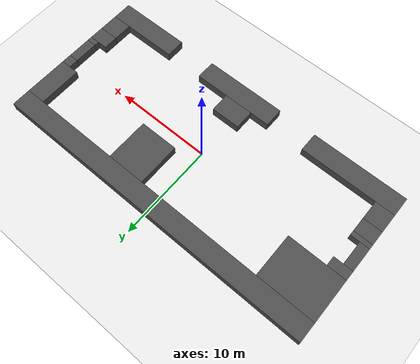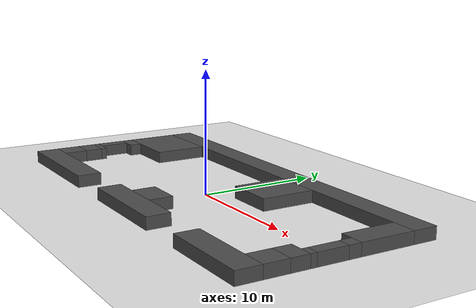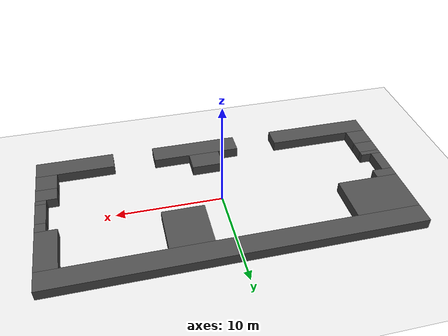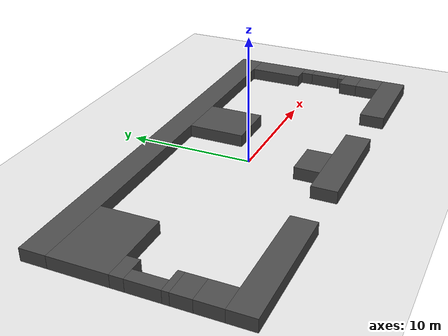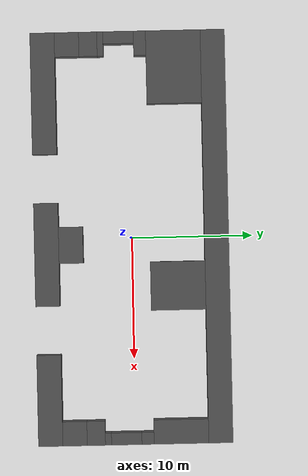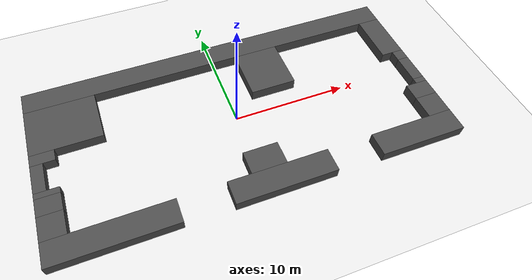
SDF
<?xml version="1.0" ?>
<sdf version="1.8">
  <world name="custom_map_world">

    <physics name="1ms" type="ignored">
      <max_step_size>0.001</max_step_size>
      <real_time_factor>1.0</real_time_factor>
    </physics>

    <plugin filename="gz-sim-physics-system"        name="gz::sim::systems::Physics"/>
    <plugin filename="gz-sim-user-commands-system"  name="gz::sim::systems::UserCommands"/>
    <plugin filename="gz-sim-scene-broadcaster-system" name="gz::sim::systems::SceneBroadcaster"/>
    <plugin filename="gz-sim-sensors-system"        name="gz::sim::systems::Sensors">
      <render_engine>ogre2</render_engine>
    </plugin>

    <light name="sun" type="directional">
      <cast_shadows>true</cast_shadows>
      <pose>0 0 10 0 0 0</pose>
      <diffuse>0.8 0.8 0.8 1</diffuse>
      <specular>0.2 0.2 0.2 1</specular>
      <direction>-0.5 0.1 -0.9</direction>
    </light>

    <model name="ground_plane">
      <static>true</static>
      <link name="link">
        <collision name="collision">
          <geometry><plane><normal>0 0 1</normal><size>100 100</size></plane></geometry>
        </collision>
        <visual name="visual">
          <geometry><plane><normal>0 0 1</normal><size>100 100</size></plane></geometry>
          <material><ambient>0.9 0.9 0.9 1</ambient><diffuse>0.9 0.9 0.9 1</diffuse></material>
        </visual>
      </link>
    </model>

    <model name="top_border">
      <static>true</static>
      <pose>0.0000 7.0000 0.50 0 0 0</pose>
      <link name="link">
        <collision name="collision">
          <geometry><box><size>34.0000 2.0000 1.0</size></box></geometry>
        </collision>
        <visual name="visual">
          <geometry><box><size>34.0000 2.0000 1.0</size></box></geometry>
          <material><ambient>0.2 0.2 0.2 1</ambient><diffuse>0.3 0.3 0.3 1</diffuse></material>
        </visual>
      </link>
    </model>
    <model name="upper_left_wall">
      <static>true</static>
      <pose>-14.0000 3.7500 0.50 0 0 0</pose>
      <link name="link">
        <collision name="collision">
          <geometry><box><size>6.0000 4.5000 1.0</size></box></geometry>
        </collision>
        <visual name="visual">
          <geometry><box><size>6.0000 4.5000 1.0</size></box></geometry>
          <material><ambient>0.2 0.2 0.2 1</ambient><diffuse>0.3 0.3 0.3 1</diffuse></material>
        </visual>
      </link>
    </model>
    <model name="upper_center_divider">
      <static>true</static>
      <pose>4.0000 3.7500 0.50 0 0 0</pose>
      <link name="link">
        <collision name="collision">
          <geometry><box><size>4.0000 4.5000 1.0</size></box></geometry>
        </collision>
        <visual name="visual">
          <geometry><box><size>4.0000 4.5000 1.0</size></box></geometry>
          <material><ambient>0.2 0.2 0.2 1</ambient><diffuse>0.3 0.3 0.3 1</diffuse></material>
        </visual>
      </link>
    </model>
    <model name="upper_right_border">
      <static>true</static>
      <pose>16.0000 3.7500 0.50 0 0 0</pose>
      <link name="link">
        <collision name="collision">
          <geometry><box><size>2.0000 4.5000 1.0</size></box></geometry>
        </collision>
        <visual name="visual">
          <geometry><box><size>2.0000 4.5000 1.0</size></box></geometry>
          <material><ambient>0.2 0.2 0.2 1</ambient><diffuse>0.3 0.3 0.3 1</diffuse></material>
        </visual>
      </link>
    </model>
    <model name="mid_upper_left">
      <static>true</static>
      <pose>-16.0000 1.0000 0.50 0 0 0</pose>
      <link name="link">
        <collision name="collision">
          <geometry><box><size>2.0000 1.0000 1.0</size></box></geometry>
        </collision>
        <visual name="visual">
          <geometry><box><size>2.0000 1.0000 1.0</size></box></geometry>
          <material><ambient>0.2 0.2 0.2 1</ambient><diffuse>0.3 0.3 0.3 1</diffuse></material>
        </visual>
      </link>
    </model>
    <model name="mid_upper_right">
      <static>true</static>
      <pose>16.5000 1.0000 0.50 0 0 0</pose>
      <link name="link">
        <collision name="collision">
          <geometry><box><size>1.0000 1.0000 1.0</size></box></geometry>
        </collision>
        <visual name="visual">
          <geometry><box><size>1.0000 1.0000 1.0</size></box></geometry>
          <material><ambient>0.2 0.2 0.2 1</ambient><diffuse>0.3 0.3 0.3 1</diffuse></material>
        </visual>
      </link>
    </model>
    <model name="mid_left_thin">
      <static>true</static>
      <pose>-16.5000 -0.7500 0.50 0 0 0</pose>
      <link name="link">
        <collision name="collision">
          <geometry><box><size>1.0000 2.5000 1.0</size></box></geometry>
        </collision>
        <visual name="visual">
          <geometry><box><size>1.0000 2.5000 1.0</size></box></geometry>
          <material><ambient>0.2 0.2 0.2 1</ambient><diffuse>0.3 0.3 0.3 1</diffuse></material>
        </visual>
      </link>
    </model>
    <model name="mid_right_thin">
      <static>true</static>
      <pose>16.5000 -0.7500 0.50 0 0 0</pose>
      <link name="link">
        <collision name="collision">
          <geometry><box><size>1.0000 2.5000 1.0</size></box></geometry>
        </collision>
        <visual name="visual">
          <geometry><box><size>1.0000 2.5000 1.0</size></box></geometry>
          <material><ambient>0.2 0.2 0.2 1</ambient><diffuse>0.3 0.3 0.3 1</diffuse></material>
        </visual>
      </link>
    </model>
    <model name="mid_lower_left_a">
      <static>true</static>
      <pose>-16.0000 -2.2500 0.50 0 0 0</pose>
      <link name="link">
        <collision name="collision">
          <geometry><box><size>2.0000 0.5000 1.0</size></box></geometry>
        </collision>
        <visual name="visual">
          <geometry><box><size>2.0000 0.5000 1.0</size></box></geometry>
          <material><ambient>0.2 0.2 0.2 1</ambient><diffuse>0.3 0.3 0.3 1</diffuse></material>
        </visual>
      </link>
    </model>
    <model name="mid_lower_right_a">
      <static>true</static>
      <pose>16.5000 -2.2500 0.50 0 0 0</pose>
      <link name="link">
        <collision name="collision">
          <geometry><box><size>1.0000 0.5000 1.0</size></box></geometry>
        </collision>
        <visual name="visual">
          <geometry><box><size>1.0000 0.5000 1.0</size></box></geometry>
          <material><ambient>0.2 0.2 0.2 1</ambient><diffuse>0.3 0.3 0.3 1</diffuse></material>
        </visual>
      </link>
    </model>
    <model name="mid_lower_left_b">
      <static>true</static>
      <pose>-16.0000 -3.2500 0.50 0 0 0</pose>
      <link name="link">
        <collision name="collision">
          <geometry><box><size>2.0000 1.5000 1.0</size></box></geometry>
        </collision>
        <visual name="visual">
          <geometry><box><size>2.0000 1.5000 1.0</size></box></geometry>
          <material><ambient>0.2 0.2 0.2 1</ambient><diffuse>0.3 0.3 0.3 1</diffuse></material>
        </visual>
      </link>
    </model>
    <model name="mid_lower_right_b">
      <static>true</static>
      <pose>16.0000 -3.2500 0.50 0 0 0</pose>
      <link name="link">
        <collision name="collision">
          <geometry><box><size>2.0000 1.5000 1.0</size></box></geometry>
        </collision>
        <visual name="visual">
          <geometry><box><size>2.0000 1.5000 1.0</size></box></geometry>
          <material><ambient>0.2 0.2 0.2 1</ambient><diffuse>0.3 0.3 0.3 1</diffuse></material>
        </visual>
      </link>
    </model>
    <model name="lower_left_wall">
      <static>true</static>
      <pose>-16.0000 -5.0000 0.50 0 0 0</pose>
      <link name="link">
        <collision name="collision">
          <geometry><box><size>2.0000 2.0000 1.0</size></box></geometry>
        </collision>
        <visual name="visual">
          <geometry><box><size>2.0000 2.0000 1.0</size></box></geometry>
          <material><ambient>0.2 0.2 0.2 1</ambient><diffuse>0.3 0.3 0.3 1</diffuse></material>
        </visual>
      </link>
    </model>
    <model name="lower_center_island">
      <static>true</static>
      <pose>0.5000 -5.0000 0.50 0 0 0</pose>
      <link name="link">
        <collision name="collision">
          <geometry><box><size>3.0000 2.0000 1.0</size></box></geometry>
        </collision>
        <visual name="visual">
          <geometry><box><size>3.0000 2.0000 1.0</size></box></geometry>
          <material><ambient>0.2 0.2 0.2 1</ambient><diffuse>0.3 0.3 0.3 1</diffuse></material>
        </visual>
      </link>
    </model>
    <model name="lower_right_wall">
      <static>true</static>
      <pose>16.0000 -5.0000 0.50 0 0 0</pose>
      <link name="link">
        <collision name="collision">
          <geometry><box><size>2.0000 2.0000 1.0</size></box></geometry>
        </collision>
        <visual name="visual">
          <geometry><box><size>2.0000 2.0000 1.0</size></box></geometry>
          <material><ambient>0.2 0.2 0.2 1</ambient><diffuse>0.3 0.3 0.3 1</diffuse></material>
        </visual>
      </link>
    </model>
    <model name="bottom_left">
      <static>true</static>
      <pose>-12.0000 -7.0000 0.50 0 0 0</pose>
      <link name="link">
        <collision name="collision">
          <geometry><box><size>10.0000 2.0000 1.0</size></box></geometry>
        </collision>
        <visual name="visual">
          <geometry><box><size>10.0000 2.0000 1.0</size></box></geometry>
          <material><ambient>0.2 0.2 0.2 1</ambient><diffuse>0.3 0.3 0.3 1</diffuse></material>
        </visual>
      </link>
    </model>
    <model name="bottom_center">
      <static>true</static>
      <pose>1.2500 -7.0000 0.50 0 0 0</pose>
      <link name="link">
        <collision name="collision">
          <geometry><box><size>8.5000 2.0000 1.0</size></box></geometry>
        </collision>
        <visual name="visual">
          <geometry><box><size>8.5000 2.0000 1.0</size></box></geometry>
          <material><ambient>0.2 0.2 0.2 1</ambient><diffuse>0.3 0.3 0.3 1</diffuse></material>
        </visual>
      </link>
    </model>
    <model name="bottom_right">
      <static>true</static>
      <pose>13.2500 -7.0000 0.50 0 0 0</pose>
      <link name="link">
        <collision name="collision">
          <geometry><box><size>7.5000 2.0000 1.0</size></box></geometry>
        </collision>
        <visual name="visual">
          <geometry><box><size>7.5000 2.0000 1.0</size></box></geometry>
          <material><ambient>0.2 0.2 0.2 1</ambient><diffuse>0.3 0.3 0.3 1</diffuse></material>
        </visual>
      </link>
    </model>
  </world>
</sdf>
